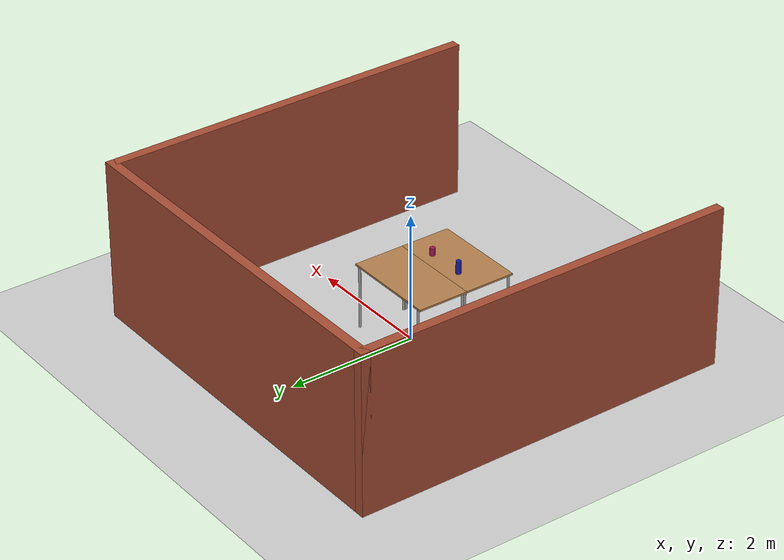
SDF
<sdf version="1.7">
 <world name="default">
  <light name="sun" type="directional">
   <pose>0 0 10 0 -0 0</pose>
   <diffuse>0.8 0.8 0.8 1</diffuse>
   <specular>0.2 0.2 0.2 1</specular>
   <attenuation>
    <range>1000</range>
    <constant>0.9</constant>
    <linear>0.01</linear>
    <quadratic>0.001</quadratic>
   </attenuation>
   <direction>-0.5 0.1 -0.9</direction>
   <spot><inner_angle>0</inner_angle><outer_angle>0</outer_angle><falloff>0</falloff></spot>
  </light>
  <model name="ground_plane">
   <static>1</static>
   <link name="link">
    <collision name="collision">
     <geometry><plane><normal>0 0 1</normal><size>100 100</size></plane></geometry>
     <surface><friction><ode><mu>100</mu><mu2>50</mu2></ode></friction></surface>
    </collision>
    <visual name="visual">
     <cast_shadows>0</cast_shadows>
     <geometry><plane><normal>0 0 1</normal><size>100 100</size></plane></geometry>
     <material>
      <script><uri>file://media/materials/scripts/gazebo.material</uri><name>Gazebo/Grey</name></script>
     </material>
    </visual>
   </link>
  </model>
  <gravity>0 0 -9.8</gravity>
  <magnetic_field>6e-06 2.3e-05 -4.2e-05</magnetic_field>
  <atmosphere type="adiabatic"/>
  <physics type="ode">
   <max_step_size>0.001</max_step_size>
   <real_time_factor>1</real_time_factor>
   <real_time_update_rate>1000</real_time_update_rate>
  </physics>
  <scene><ambient>0.4 0.4 0.4 1</ambient><background>0.7 0.7 0.7 1</background><shadows>1</shadows></scene>
  <audio><device>default</device></audio>
  <spherical_coordinates>
   <surface_model>EARTH_WGS84</surface_model>
   <latitude_deg>0</latitude_deg>
   <longitude_deg>0</longitude_deg>
   <elevation>0</elevation>
   <heading_deg>0</heading_deg>
  </spherical_coordinates>
  <model name="table">
   <static>1</static>
   <link name="link">
    <collision name="surface">
     <pose>0 0 1 0 -0 0</pose>
     <geometry><box><size>1.5 0.8 0.03</size></box></geometry>
     <surface><friction><ode><mu>0.6</mu><mu2>0.6</mu2></ode></friction></surface>
    </collision>
    <visual name="visual1">
     <pose>0 0 1 0 -0 0</pose>
     <geometry><box><size>1.5 0.8 0.03</size></box></geometry>
     <material>
      <script><uri>file://media/materials/scripts/gazebo.material</uri><name>Gazebo/Wood</name></script>
     </material>
    </visual>
    <collision name="front_left_leg">
     <pose>0.68 0.38 0.5 0 -0 0</pose>
     <geometry><cylinder><radius>0.02</radius><length>1</length></cylinder></geometry>
    </collision>
    <visual name="front_left_leg">
     <pose>0.68 0.38 0.5 0 -0 0</pose>
     <geometry><cylinder><radius>0.02</radius><length>1</length></cylinder></geometry>
     <material>
      <script><uri>file://media/materials/scripts/gazebo.material</uri><name>Gazebo/Grey</name></script>
     </material>
    </visual>
    <collision name="front_right_leg">
     <pose>0.68 -0.38 0.5 0 -0 0</pose>
     <geometry><cylinder><radius>0.02</radius><length>1</length></cylinder></geometry>
    </collision>
    <visual name="front_right_leg">
     <pose>0.68 -0.38 0.5 0 -0 0</pose>
     <geometry><cylinder><radius>0.02</radius><length>1</length></cylinder></geometry>
     <material>
      <script><uri>file://media/materials/scripts/gazebo.material</uri><name>Gazebo/Grey</name></script>
     </material>
    </visual>
    <collision name="back_right_leg">
     <pose>-0.68 -0.38 0.5 0 -0 0</pose>
     <geometry><cylinder><radius>0.02</radius><length>1</length></cylinder></geometry>
    </collision>
    <visual name="back_right_leg">
     <pose>-0.68 -0.38 0.5 0 -0 0</pose>
     <geometry><cylinder><radius>0.02</radius><length>1</length></cylinder></geometry>
     <material>
      <script><uri>file://media/materials/scripts/gazebo.material</uri><name>Gazebo/Grey</name></script>
     </material>
    </visual>
    <collision name="back_left_leg">
     <pose>-0.68 0.38 0.5 0 -0 0</pose>
     <geometry><cylinder><radius>0.02</radius><length>1</length></cylinder></geometry>
    </collision>
    <visual name="back_left_leg">
     <pose>-0.68 0.38 0.5 0 -0 0</pose>
     <geometry><cylinder><radius>0.02</radius><length>1</length></cylinder></geometry>
     <material>
      <script><uri>file://media/materials/scripts/gazebo.material</uri><name>Gazebo/Grey</name></script>
     </material>
    </visual>
   </link>
  </model>
  <model name="table_0">
   <static>1</static>
   <link name="link">
    <collision name="surface">
     <pose>0 0 1 0 -0 0</pose>
     <geometry><box><size>1.5 0.8 0.03</size></box></geometry>
     <surface><friction><ode><mu>0.6</mu><mu2>0.6</mu2></ode></friction></surface>
    </collision>
    <visual name="visual1">
     <pose>0 0 1 0 -0 0</pose>
     <geometry><box><size>1.5 0.8 0.03</size></box></geometry>
     <material>
      <script><uri>file://media/materials/scripts/gazebo.material</uri><name>Gazebo/Wood</name></script>
     </material>
    </visual>
    <collision name="front_left_leg">
     <pose>0.68 0.38 0.5 0 -0 0</pose>
     <geometry><cylinder><radius>0.02</radius><length>1</length></cylinder></geometry>
    </collision>
    <visual name="front_left_leg">
     <pose>0.68 0.38 0.5 0 -0 0</pose>
     <geometry><cylinder><radius>0.02</radius><length>1</length></cylinder></geometry>
     <material>
      <script><uri>file://media/materials/scripts/gazebo.material</uri><name>Gazebo/Grey</name></script>
     </material>
    </visual>
    <collision name="front_right_leg">
     <pose>0.68 -0.38 0.5 0 -0 0</pose>
     <geometry><cylinder><radius>0.02</radius><length>1</length></cylinder></geometry>
    </collision>
    <visual name="front_right_leg">
     <pose>0.68 -0.38 0.5 0 -0 0</pose>
     <geometry><cylinder><radius>0.02</radius><length>1</length></cylinder></geometry>
     <material>
      <script><uri>file://media/materials/scripts/gazebo.material</uri><name>Gazebo/Grey</name></script>
     </material>
    </visual>
    <collision name="back_right_leg">
     <pose>-0.68 -0.38 0.5 0 -0 0</pose>
     <geometry><cylinder><radius>0.02</radius><length>1</length></cylinder></geometry>
    </collision>
    <visual name="back_right_leg">
     <pose>-0.68 -0.38 0.5 0 -0 0</pose>
     <geometry><cylinder><radius>0.02</radius><length>1</length></cylinder></geometry>
     <material>
      <script><uri>file://media/materials/scripts/gazebo.material</uri><name>Gazebo/Grey</name></script>
     </material>
    </visual>
    <collision name="back_left_leg">
     <pose>-0.68 0.38 0.5 0 -0 0</pose>
     <geometry><cylinder><radius>0.02</radius><length>1</length></cylinder></geometry>
    </collision>
    <visual name="back_left_leg">
     <pose>-0.68 0.38 0.5 0 -0 0</pose>
     <geometry><cylinder><radius>0.02</radius><length>1</length></cylinder></geometry>
     <material>
      <script><uri>file://media/materials/scripts/gazebo.material</uri><name>Gazebo/Grey</name></script>
     </material>
    </visual>
   </link>
   <pose>0 -0.8 0 0 -0 0</pose>
  </model>
  <model name="building">
   <pose>1e-06 -0 0 0 0 -1.57</pose>
   <link name="Wall_14">
    <collision name="Wall_14_Collision">
     <geometry><box><size>6 0.15 2.5</size></box></geometry>
     <pose>0 0 1.25 0 -0 0</pose>
    </collision>
    <visual name="Wall_14_Visual">
     <pose>0 0 1.25 0 -0 0</pose>
     <geometry><box><size>6 0.15 2.5</size></box></geometry>
     <material>
      <script><uri>file://media/materials/scripts/gazebo.material</uri><name>Gazebo/Bricks</name></script>
      <ambient>1 1 1 1</ambient>
     </material>
     <meta><layer>0</layer></meta>
    </visual>
    <pose>0 2.925 0 0 -0 0</pose>
   </link>
   <link name="Wall_16">
    <collision name="Wall_16_Collision">
     <geometry><box><size>6 0.15 2.5</size></box></geometry>
     <pose>0 0 1.25 0 -0 0</pose>
    </collision>
    <visual name="Wall_16_Visual">
     <pose>0 0 1.25 0 -0 0</pose>
     <geometry><box><size>6 0.15 2.5</size></box></geometry>
     <material>
      <script><uri>file://media/materials/scripts/gazebo.material</uri><name>Gazebo/Bricks</name></script>
      <ambient>1 1 1 1</ambient>
     </material>
     <meta><layer>0</layer></meta>
    </visual>
    <pose>0 -2.925 0 0 -0 0</pose>
   </link>
   <link name="Wall_9">
    <collision name="Wall_9_Collision">
     <geometry><box><size>6 0.15 2.5</size></box></geometry>
     <pose>0 0 1.25 0 -0 0</pose>
    </collision>
    <visual name="Wall_9_Visual">
     <pose>0 0 1.25 0 -0 0</pose>
     <geometry><box><size>6 0.15 2.5</size></box></geometry>
     <material>
      <script><uri>file://media/materials/scripts/gazebo.material</uri><name>Gazebo/Bricks</name></script>
      <ambient>1 1 1 1</ambient>
     </material>
     <meta><layer>0</layer></meta>
    </visual>
    <pose>-2.925 0 0 0 -0 1.5708</pose>
   </link>
   <static>1</static>
  </model>
  <model name="glass_cup">
   <link name="link">
    <inertial>
     <mass>0.603186</mass>
     <inertia>
      <ixx>0.0009651</ixx>
      <ixy>0</ixy>
      <ixz>0</ixz>
      <iyy>0.0009651</iyy>
      <iyz>0</iyz>
      <izz>0.00048255</izz>
     </inertia>
    </inertial>
    <visual name="visual">
     <geometry><cylinder><radius>0.04</radius><length>0.12</length></cylinder></geometry>
     <material>
      <script><name>Gazebo/Grey</name><uri>file://media/materials/scripts/gazebo.material</uri></script>
      <shader type="pixel"><normal_map>__default__</normal_map></shader>
      <ambient>0.6 0.1 0.3 1</ambient>
      <diffuse>0.7 0.7 0.7 1</diffuse>
      <specular>0.01 0.01 0.01 1</specular>
      <emissive>0 0 0 1</emissive>
     </material>
    </visual>
    <collision name="collision">
     <geometry><cylinder><radius>0.04</radius><length>0.12</length></cylinder></geometry>
     <surface>
      <friction>
       <ode><mu>1</mu><mu2>1</mu2><fdir1>0 0 0</fdir1><slip1>0</slip1><slip2>0</slip2></ode>
       <torsional>
        <coefficient>1</coefficient>
        <patch_radius>0</patch_radius>
        <surface_radius>0</surface_radius>
        <use_patch_radius>1</use_patch_radius>
        <ode><slip>0</slip></ode>
       </torsional>
      </friction>
      <bounce><restitution_coefficient>0</restitution_coefficient><threshold>1e+06</threshold></bounce>
      <contact>
       <collide_without_contact>0</collide_without_contact>
       <collide_without_contact_bitmask>1</collide_without_contact_bitmask>
       <collide_bitmask>1</collide_bitmask>
       <ode>
        <soft_cfm>0</soft_cfm>
        <soft_erp>0.2</soft_erp>
        <kp>1e+13</kp>
        <kd>1</kd>
        <max_vel>0.01</max_vel>
        <min_depth>0</min_depth>
       </ode>
       <bullet>
        <split_impulse>1</split_impulse>
        <split_impulse_penetration_threshold>-0.01</split_impulse_penetration_threshold>
        <soft_cfm>0</soft_cfm>
        <soft_erp>0.2</soft_erp>
        <kp>1e+13</kp>
        <kd>1</kd>
       </bullet>
      </contact>
     </surface>
    </collision>
   </link>
   <static>0</static>
   <pose>0.29999 -0.599953 1.075 4.3e-05 -2.7e-05 -0.000118</pose>
  </model>
  <model name="water_bottle">
   <link name="link">
    <inertial>
     <mass>0.603186</mass>
     <inertia>
      <ixx>0.0009651</ixx>
      <ixy>0</ixy>
      <ixz>0</ixz>
      <iyy>0.0009651</iyy>
      <iyz>0</iyz>
      <izz>0.00048255</izz>
     </inertia>
    </inertial>
    <visual name="visual">
     <geometry><cylinder><radius>0.04</radius><length>0.2</length></cylinder></geometry>
     <material>
      <script><name>Gazebo/Grey</name><uri>file://media/materials/scripts/gazebo.material</uri></script>
      <shader type="pixel"><normal_map>__default__</normal_map></shader>
      <ambient>0.1 0.1 0.6 1</ambient>
      <diffuse>0.7 0.7 0.7 1</diffuse>
      <specular>0.01 0.01 0.01 1</specular>
      <emissive>0 0 0 1</emissive>
     </material>
    </visual>
    <collision name="collision">
     <geometry><cylinder><radius>0.04</radius><length>0.2</length></cylinder></geometry>
     <surface>
      <friction>
       <ode><mu>1</mu><mu2>1</mu2><fdir1>0 0 0</fdir1><slip1>0</slip1><slip2>0</slip2></ode>
       <torsional>
        <coefficient>1</coefficient>
        <patch_radius>0</patch_radius>
        <surface_radius>0</surface_radius>
        <use_patch_radius>1</use_patch_radius>
        <ode><slip>0</slip></ode>
       </torsional>
      </friction>
      <bounce><restitution_coefficient>0</restitution_coefficient><threshold>1e+06</threshold></bounce>
      <contact>
       <collide_without_contact>0</collide_without_contact>
       <collide_without_contact_bitmask>1</collide_without_contact_bitmask>
       <collide_bitmask>1</collide_bitmask>
       <ode>
        <soft_cfm>0</soft_cfm>
        <soft_erp>0.2</soft_erp>
        <kp>1e+13</kp>
        <kd>1</kd>
        <max_vel>0.01</max_vel>
        <min_depth>0</min_depth>
       </ode>
       <bullet>
        <split_impulse>1</split_impulse>
        <split_impulse_penetration_threshold>-0.01</split_impulse_penetration_threshold>
        <soft_cfm>0</soft_cfm>
        <soft_erp>0.2</soft_erp>
        <kp>1e+13</kp>
        <kd>1</kd>
       </bullet>
      </contact>
     </surface>
    </collision>
   </link>
   <static>0</static>
   <pose>-0.300002 -0.599998 1.11499 -8e-06 -3e-06 9.6e-05</pose>
  </model>
 </world>
</sdf>
